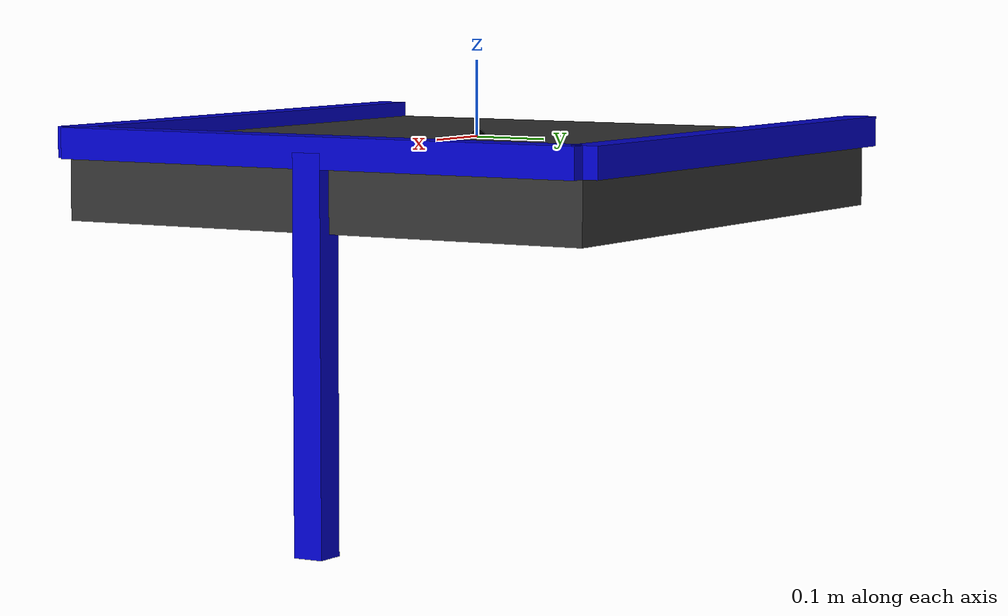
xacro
<?xml version="1.0"?>
<robot name="open_rover" xmlns:xacro="http://ros.org/wiki/xacro">

  <!-- Constants -->
  <property name="M_PI" value="3.1415926535897931" />
  <property name="M_PI_2" value="1.5707963267948966" />
  <property name="M_PI_4" value="0.7853981633974483" />

  <!-- Dummy Root Link -->
  <link name="dummy_root">
    <visual>
      <origin xyz="0 0 0" rpy="0 0 0"/>
      <geometry><sphere radius="0.01"/></geometry>
      <material name="transparent"><color rgba="0 0 0 0"/></material>
    </visual>
    <collision>
      <origin xyz="0 0 0" rpy="0 0 0"/>
      <geometry><sphere radius="0.01"/></geometry>
    </collision>
  </link>

  <!-- Materials -->
  <material name="black"><color rgba="0 0 0 1"/></material>
  <material name="blue"><color rgba="0 0 0.8 1"/></material>
  <material name="grey"><color rgba="0.2 0.2 0.2 1"/></material>
  <material name="red"><color rgba="0.8 0 0 1"/></material>

  <!-- Main Frame Links -->
  <link name="main_frame_side1">
    <visual><geometry><box size="0.76 0.04 0.04"/></geometry><material name="blue"/></visual>
    <collision><geometry><box size="0.76 0.04 0.04"/></geometry></collision>
    <inertial><mass value="1.8"/><inertia ixx="0.002" ixy="0" ixz="0" iyy="0.087" iyz="0" izz="0.087"/></inertial>
  </link>
  <link name="main_frame_side2">
    <visual><geometry><box size="0.76 0.04 0.04"/></geometry><material name="blue"/></visual>
    <collision><geometry><box size="0.76 0.04 0.04"/></geometry></collision>
    <inertial><mass value="1.8"/><inertia ixx="0.002" ixy="0" ixz="0" iyy="0.087" iyz="0" izz="0.087"/></inertial>
  </link>
  <link name="main_frame_end1">
    <visual><geometry><box size="0.75 0.04 0.04"/></geometry><material name="blue"/></visual>
    <collision><geometry><box size="0.75 0.04 0.04"/></geometry></collision>
    <inertial><mass value="1.8"/><inertia ixx="0.002" ixy="0" ixz="0" iyy="0.085" iyz="0" izz="0.085"/></inertial>
  </link>
  <link name="main_frame_end2">
    <visual><geometry><box size="0.75 0.04 0.04"/></geometry><material name="blue"/></visual>
    <collision><geometry><box size="0.75 0.04 0.04"/></geometry></collision>
    <inertial><mass value="1.8"/><inertia ixx="0.002" ixy="0" ixz="0" iyy="0.085" iyz="0" izz="0.085"/></inertial>
  </link>
  <link name="main_frame_leg1">
    <visual><geometry><box size="0.04 0.04 0.5"/></geometry><material name="blue"/></visual>
    <collision><geometry><box size="0.04 0.04 0.5"/></geometry></collision>
    <inertial><mass value="1.2"/><inertia ixx="0.025" ixy="0" ixz="0" iyy="0.025" iyz="0" izz="0.002"/></inertial>
  </link>
  <link name="main_frame_leg2">
    <visual><geometry><box size="0.04 0.04 0.5"/></geometry><material name="blue"/></visual>
    <collision><geometry><box size="0.04 0.04 0.5"/></geometry></collision>
    <inertial><mass value="1.2"/><inertia ixx="0.025" ixy="0" ixz="0" iyy="0.025" iyz="0" izz="0.002"/></inertial>
  </link>
  <link name="sheet_metal_box">
    <visual><geometry><box size="0.76 0.75 0.1"/></geometry><material name="grey"/></visual>
    <collision><geometry><box size="0.76 0.75 0.1"/></geometry></collision>
    <inertial><mass value="11.3"/><inertia ixx="0.54" ixy="0" ixz="0" iyy="0.55" iyz="0" izz="1.08"/></inertial>
  </link>

  <!-- Main Frame Joints -->
  <joint name="main_frame_side1_joint" type="fixed">
    <parent link="dummy_root"/>
    <child link="main_frame_side1"/>
    <origin xyz="0 0.375 0" rpy="0 0 0"/>
  </joint>
  <joint name="main_frame_side2_joint" type="fixed">
    <parent link="main_frame_side1"/>
    <child link="main_frame_side2"/>
    <origin xyz="0 -0.75 0" rpy="0 0 0"/>
  </joint>
  <joint name="main_frame_end1_joint" type="fixed">
    <parent link="main_frame_side1"/>
    <child link="main_frame_end1"/>
    <origin xyz="0.38 -0.375 0" rpy="0 0 1.5708"/>
  </joint>
  <joint name="main_frame_end2_joint" type="fixed">
    <parent link="main_frame_side2"/>
    <child link="main_frame_end2"/>
    <origin xyz="0.38 0.375 0" rpy="0 0 1.5708"/>
  </joint>
  <joint name="main_frame_leg1_joint" type="fixed">
    <parent link="main_frame_end1"/>
    <child link="main_frame_leg1"/>
    <origin xyz="0 0 -0.25" rpy="0 0 0"/>
  </joint>
  <joint name="main_frame_leg2_joint" type="fixed">
    <parent link="main_frame_end2"/>
    <child link="main_frame_leg2"/>
    <origin xyz="0 0 -0.25" rpy="0 0 0"/>
  </joint>
  <joint name="sheet_metal_box_joint" type="fixed">
    <parent link="main_frame_side1"/>
    <child link="sheet_metal_box"/>
    <origin xyz="0 -0.375 -0.05" rpy="0 0 0"/>
  </joint>
</robot>
